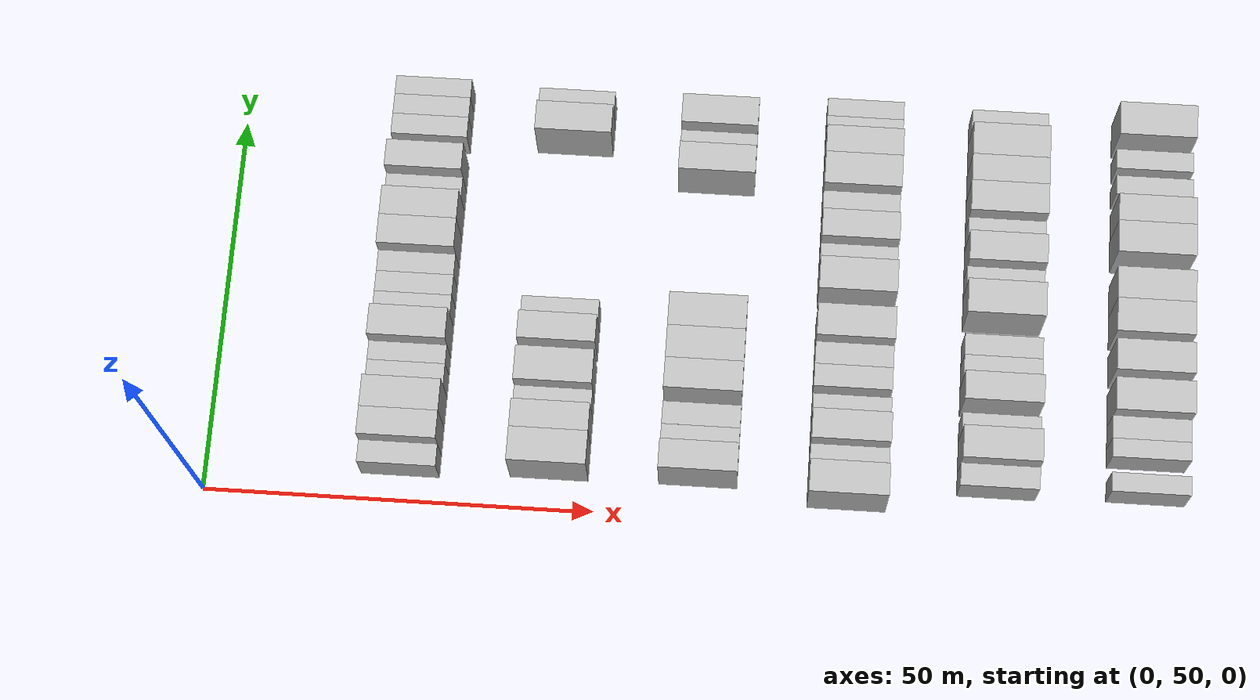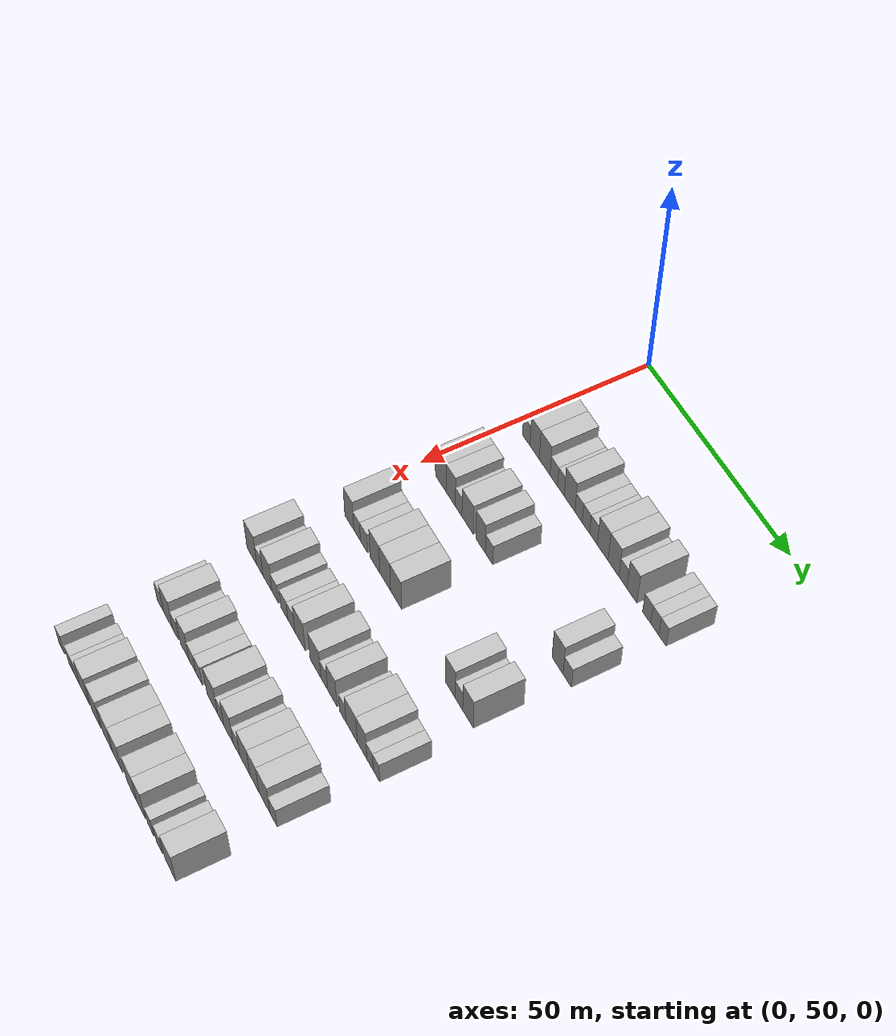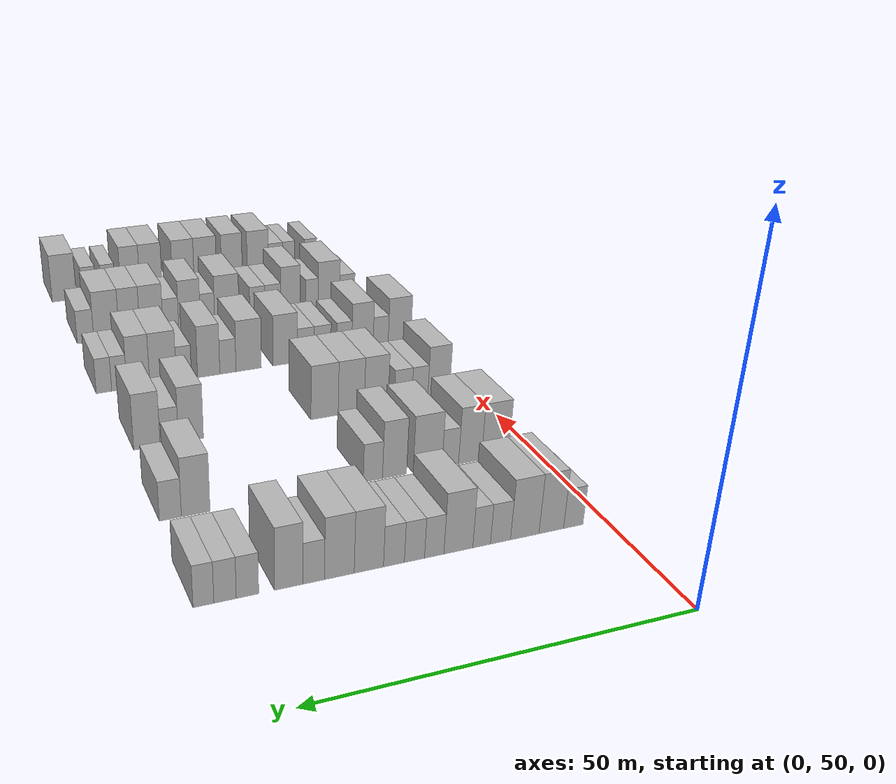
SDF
<sdf version="1.6">
 <world name="default">
  <model name="building_100">
   <static>1</static>
   <pose>25.0000 54.7202 0 0.000000 0.000000 0.000000</pose>
   <link name="link">
    <pose>0 0 3.00 0 0 0</pose>
    <collision name="collision"><geometry><box><size>10.0000 2.8771 6.0000</size></box></geometry></collision>
    <visual name="visual">
     <cast_shadows>0</cast_shadows>
     <geometry><box><size>10.0000 2.8771 6.0000</size></box></geometry>
     <material>
      <script>
       <uri>model://HANNAS_wall/materials/scripts</uri>
       <uri>model://HANNAS_wall/materials/textures</uri>
       <name>vrc/HANNAS_wall</name>
      </script>
     </material>
    </visual>
   </link>
  </model>
  <model name="building_101">
   <static>1</static>
   <pose>25.0000 57.9601 0 0.000000 0.000000 0.000000</pose>
   <link name="link">
    <pose>0 0 4.50 0 0 0</pose>
    <collision name="collision"><geometry><box><size>10.0000 3.6027 9.0000</size></box></geometry></collision>
    <visual name="visual">
     <cast_shadows>0</cast_shadows>
     <geometry><box><size>10.0000 3.6027 9.0000</size></box></geometry>
     <material>
      <script>
       <uri>model://HANNAS_wall/materials/scripts</uri>
       <uri>model://HANNAS_wall/materials/textures</uri>
       <name>vrc/HANNAS_wall</name>
      </script>
     </material>
    </visual>
   </link>
  </model>
  <model name="building_102">
   <static>1</static>
   <pose>25.0000 61.8194 0 0.000000 0.000000 0.000000</pose>
   <link name="link">
    <pose>0 0 4.50 0 0 0</pose>
    <collision name="collision"><geometry><box><size>10.0000 4.1159 9.0000</size></box></geometry></collision>
    <visual name="visual">
     <cast_shadows>0</cast_shadows>
     <geometry><box><size>10.0000 4.1159 9.0000</size></box></geometry>
     <material>
      <script>
       <uri>model://HANNAS_wall/materials/scripts</uri>
       <uri>model://HANNAS_wall/materials/textures</uri>
       <name>vrc/HANNAS_wall</name>
      </script>
     </material>
    </visual>
   </link>
  </model>
  <model name="building_103">
   <static>1</static>
   <pose>25.0000 65.3079 0 0.000000 0.000000 0.000000</pose>
   <link name="link">
    <pose>0 0 3.00 0 0 0</pose>
    <collision name="collision"><geometry><box><size>10.0000 2.8610 6.0000</size></box></geometry></collision>
    <visual name="visual">
     <cast_shadows>0</cast_shadows>
     <geometry><box><size>10.0000 2.8610 6.0000</size></box></geometry>
     <material>
      <script>
       <uri>model://HANNAS_wall/materials/scripts</uri>
       <uri>model://HANNAS_wall/materials/textures</uri>
       <name>vrc/HANNAS_wall</name>
      </script>
     </material>
    </visual>
   </link>
  </model>
  <model name="building_104">
   <static>1</static>
   <pose>25.0000 67.9923 0 0.000000 0.000000 0.000000</pose>
   <link name="link">
    <pose>0 0 3.00 0 0 0</pose>
    <collision name="collision"><geometry><box><size>10.0000 2.5078 6.0000</size></box></geometry></collision>
    <visual name="visual">
     <cast_shadows>0</cast_shadows>
     <geometry><box><size>10.0000 2.5078 6.0000</size></box></geometry>
     <material>
      <script>
       <uri>model://HANNAS_wall/materials/scripts</uri>
       <uri>model://HANNAS_wall/materials/textures</uri>
       <name>vrc/HANNAS_wall</name>
      </script>
     </material>
    </visual>
   </link>
  </model>
  <model name="building_105">
   <static>1</static>
   <pose>25.0000 71.2593 0 0.000000 0.000000 0.000000</pose>
   <link name="link">
    <pose>0 0 4.50 0 0 0</pose>
    <collision name="collision"><geometry><box><size>10.0000 4.0262 9.0000</size></box></geometry></collision>
    <visual name="visual">
     <cast_shadows>0</cast_shadows>
     <geometry><box><size>10.0000 4.0262 9.0000</size></box></geometry>
     <material>
      <script>
       <uri>model://HANNAS_wall/materials/scripts</uri>
       <uri>model://HANNAS_wall/materials/textures</uri>
       <name>vrc/HANNAS_wall</name>
      </script>
     </material>
    </visual>
   </link>
  </model>
  <model name="building_106">
   <static>1</static>
   <pose>25.0000 74.6072 0 0.000000 0.000000 0.000000</pose>
   <link name="link">
    <pose>0 0 3.00 0 0 0</pose>
    <collision name="collision"><geometry><box><size>10.0000 2.6695 6.0000</size></box></geometry></collision>
    <visual name="visual">
     <cast_shadows>0</cast_shadows>
     <geometry><box><size>10.0000 2.6695 6.0000</size></box></geometry>
     <material>
      <script>
       <uri>model://HANNAS_wall/materials/scripts</uri>
       <uri>model://HANNAS_wall/materials/textures</uri>
       <name>vrc/HANNAS_wall</name>
      </script>
     </material>
    </visual>
   </link>
  </model>
  <model name="building_107">
   <static>1</static>
   <pose>25.0000 77.3143 0 0.000000 0.000000 0.000000</pose>
   <link name="link">
    <pose>0 0 3.00 0 0 0</pose>
    <collision name="collision"><geometry><box><size>10.0000 2.7448 6.0000</size></box></geometry></collision>
    <visual name="visual">
     <cast_shadows>0</cast_shadows>
     <geometry><box><size>10.0000 2.7448 6.0000</size></box></geometry>
     <material>
      <script>
       <uri>model://HANNAS_wall/materials/scripts</uri>
       <uri>model://HANNAS_wall/materials/textures</uri>
       <name>vrc/HANNAS_wall</name>
      </script>
     </material>
    </visual>
   </link>
  </model>
  <model name="building_108">
   <static>1</static>
   <pose>25.0000 80.0945 0 0.000000 0.000000 0.000000</pose>
   <link name="link">
    <pose>0 0 3.00 0 0 0</pose>
    <collision name="collision"><geometry><box><size>10.0000 2.8157 6.0000</size></box></geometry></collision>
    <visual name="visual">
     <cast_shadows>0</cast_shadows>
     <geometry><box><size>10.0000 2.8157 6.0000</size></box></geometry>
     <material>
      <script>
       <uri>model://HANNAS_wall/materials/scripts</uri>
       <uri>model://HANNAS_wall/materials/textures</uri>
       <name>vrc/HANNAS_wall</name>
      </script>
     </material>
    </visual>
   </link>
  </model>
  <model name="building_109">
   <static>1</static>
   <pose>25.0000 83.4525 0 0.000000 0.000000 0.000000</pose>
   <link name="link">
    <pose>0 0 4.50 0 0 0</pose>
    <collision name="collision"><geometry><box><size>10.0000 3.9001 9.0000</size></box></geometry></collision>
    <visual name="visual">
     <cast_shadows>0</cast_shadows>
     <geometry><box><size>10.0000 3.9001 9.0000</size></box></geometry>
     <material>
      <script>
       <uri>model://HANNAS_wall/materials/scripts</uri>
       <uri>model://HANNAS_wall/materials/textures</uri>
       <name>vrc/HANNAS_wall</name>
      </script>
     </material>
    </visual>
   </link>
  </model>
  <model name="building_110">
   <static>1</static>
   <pose>25.0000 87.3548 0 0.000000 0.000000 0.000000</pose>
   <link name="link">
    <pose>0 0 4.50 0 0 0</pose>
    <collision name="collision"><geometry><box><size>10.0000 3.9045 9.0000</size></box></geometry></collision>
    <visual name="visual">
     <cast_shadows>0</cast_shadows>
     <geometry><box><size>10.0000 3.9045 9.0000</size></box></geometry>
     <material>
      <script>
       <uri>model://HANNAS_wall/materials/scripts</uri>
       <uri>model://HANNAS_wall/materials/textures</uri>
       <name>vrc/HANNAS_wall</name>
      </script>
     </material>
    </visual>
   </link>
  </model>
  <model name="building_111">
   <static>1</static>
   <pose>25.0000 90.7027 0 0.000000 0.000000 0.000000</pose>
   <link name="link">
    <pose>0 0 3.00 0 0 0</pose>
    <collision name="collision"><geometry><box><size>10.0000 2.7913 6.0000</size></box></geometry></collision>
    <visual name="visual">
     <cast_shadows>0</cast_shadows>
     <geometry><box><size>10.0000 2.7913 6.0000</size></box></geometry>
     <material>
      <script>
       <uri>model://HANNAS_wall/materials/scripts</uri>
       <uri>model://HANNAS_wall/materials/textures</uri>
       <name>vrc/HANNAS_wall</name>
      </script>
     </material>
    </visual>
   </link>
  </model>
  <model name="building_112">
   <static>1</static>
   <pose>25.0000 93.9038 0 0.000000 0.000000 0.000000</pose>
   <link name="link">
    <pose>0 0 4.50 0 0 0</pose>
    <collision name="collision"><geometry><box><size>10.0000 3.6109 9.0000</size></box></geometry></collision>
    <visual name="visual">
     <cast_shadows>0</cast_shadows>
     <geometry><box><size>10.0000 3.6109 9.0000</size></box></geometry>
     <material>
      <script>
       <uri>model://HANNAS_wall/materials/scripts</uri>
       <uri>model://HANNAS_wall/materials/textures</uri>
       <name>vrc/HANNAS_wall</name>
      </script>
     </material>
    </visual>
   </link>
  </model>
  <model name="building_113">
   <static>1</static>
   <pose>25.0000 99.1155 0 0.000000 0.000000 0.000000</pose>
   <link name="link">
    <pose>0 0 3.00 0 0 0</pose>
    <collision name="collision"><geometry><box><size>10.0000 2.8125 6.0000</size></box></geometry></collision>
    <visual name="visual">
     <cast_shadows>0</cast_shadows>
     <geometry><box><size>10.0000 2.8125 6.0000</size></box></geometry>
     <material>
      <script>
       <uri>model://HANNAS_wall/materials/scripts</uri>
       <uri>model://HANNAS_wall/materials/textures</uri>
       <name>vrc/HANNAS_wall</name>
      </script>
     </material>
    </visual>
   </link>
  </model>
  <model name="building_114">
   <static>1</static>
   <pose>25.0000 101.9049 0 0.000000 0.000000 0.000000</pose>
   <link name="link">
    <pose>0 0 3.00 0 0 0</pose>
    <collision name="collision"><geometry><box><size>10.0000 2.7663 6.0000</size></box></geometry></collision>
    <visual name="visual">
     <cast_shadows>0</cast_shadows>
     <geometry><box><size>10.0000 2.7663 6.0000</size></box></geometry>
     <material>
      <script>
       <uri>model://HANNAS_wall/materials/scripts</uri>
       <uri>model://HANNAS_wall/materials/textures</uri>
       <name>vrc/HANNAS_wall</name>
      </script>
     </material>
    </visual>
   </link>
  </model>
  <model name="building_115">
   <static>1</static>
   <pose>25.0000 104.5640 0 0.000000 0.000000 0.000000</pose>
   <link name="link">
    <pose>0 0 3.00 0 0 0</pose>
    <collision name="collision"><geometry><box><size>10.0000 2.5519 6.0000</size></box></geometry></collision>
    <visual name="visual">
     <cast_shadows>0</cast_shadows>
     <geometry><box><size>10.0000 2.5519 6.0000</size></box></geometry>
     <material>
      <script>
       <uri>model://HANNAS_wall/materials/scripts</uri>
       <uri>model://HANNAS_wall/materials/textures</uri>
       <name>vrc/HANNAS_wall</name>
      </script>
     </material>
    </visual>
   </link>
  </model>
  <model name="building_269">
   <static>1</static>
   <pose>44.0000 56.1307 0 0.000000 0.000000 0.000000</pose>
   <link name="link">
    <pose>0 0 4.50 0 0 0</pose>
    <collision name="collision"><geometry><box><size>10.0000 4.3337 9.0000</size></box></geometry></collision>
    <visual name="visual">
     <cast_shadows>0</cast_shadows>
     <geometry><box><size>10.0000 4.3337 9.0000</size></box></geometry>
     <material>
      <script>
       <uri>model://HANNAS_wall/materials/scripts</uri>
       <uri>model://HANNAS_wall/materials/textures</uri>
       <name>vrc/HANNAS_wall</name>
      </script>
     </material>
    </visual>
   </link>
  </model>
  <model name="building_270">
   <static>1</static>
   <pose>44.0000 60.1086 0 0.000000 0.000000 0.000000</pose>
   <link name="link">
    <pose>0 0 4.50 0 0 0</pose>
    <collision name="collision"><geometry><box><size>10.0000 3.6220 9.0000</size></box></geometry></collision>
    <visual name="visual">
     <cast_shadows>0</cast_shadows>
     <geometry><box><size>10.0000 3.6220 9.0000</size></box></geometry>
     <material>
      <script>
       <uri>model://HANNAS_wall/materials/scripts</uri>
       <uri>model://HANNAS_wall/materials/textures</uri>
       <name>vrc/HANNAS_wall</name>
      </script>
     </material>
    </visual>
   </link>
  </model>
  <model name="building_271">
   <static>1</static>
   <pose>44.0000 63.2046 0 0.000000 0.000000 0.000000</pose>
   <link name="link">
    <pose>0 0 3.00 0 0 0</pose>
    <collision name="collision"><geometry><box><size>10.0000 2.5700 6.0000</size></box></geometry></collision>
    <visual name="visual">
     <cast_shadows>0</cast_shadows>
     <geometry><box><size>10.0000 2.5700 6.0000</size></box></geometry>
     <material>
      <script>
       <uri>model://HANNAS_wall/materials/scripts</uri>
       <uri>model://HANNAS_wall/materials/textures</uri>
       <name>vrc/HANNAS_wall</name>
      </script>
     </material>
    </visual>
   </link>
  </model>
  <model name="building_272">
   <static>1</static>
   <pose>44.0000 66.7151 0 0.000000 0.000000 0.000000</pose>
   <link name="link">
    <pose>0 0 4.50 0 0 0</pose>
    <collision name="collision"><geometry><box><size>10.0000 4.4510 9.0000</size></box></geometry></collision>
    <visual name="visual">
     <cast_shadows>0</cast_shadows>
     <geometry><box><size>10.0000 4.4510 9.0000</size></box></geometry>
     <material>
      <script>
       <uri>model://HANNAS_wall/materials/scripts</uri>
       <uri>model://HANNAS_wall/materials/textures</uri>
       <name>vrc/HANNAS_wall</name>
      </script>
     </material>
    </visual>
   </link>
  </model>
  <model name="building_273">
   <static>1</static>
   <pose>44.0000 71.7569 0 0.000000 0.000000 0.000000</pose>
   <link name="link">
    <pose>0 0 4.50 0 0 0</pose>
    <collision name="collision"><geometry><box><size>10.0000 3.6324 9.0000</size></box></geometry></collision>
    <visual name="visual">
     <cast_shadows>0</cast_shadows>
     <geometry><box><size>10.0000 3.6324 9.0000</size></box></geometry>
     <material>
      <script>
       <uri>model://HANNAS_wall/materials/scripts</uri>
       <uri>model://HANNAS_wall/materials/textures</uri>
       <name>vrc/HANNAS_wall</name>
      </script>
     </material>
    </visual>
   </link>
  </model>
  <model name="building_274">
   <static>1</static>
   <pose>44.0000 75.0173 0 0.000000 0.000000 0.000000</pose>
   <link name="link">
    <pose>0 0 3.00 0 0 0</pose>
    <collision name="collision"><geometry><box><size>10.0000 2.8885 6.0000</size></box></geometry></collision>
    <visual name="visual">
     <cast_shadows>0</cast_shadows>
     <geometry><box><size>10.0000 2.8885 6.0000</size></box></geometry>
     <material>
      <script>
       <uri>model://HANNAS_wall/materials/scripts</uri>
       <uri>model://HANNAS_wall/materials/textures</uri>
       <name>vrc/HANNAS_wall</name>
      </script>
     </material>
    </visual>
   </link>
  </model>
  <model name="building_275">
   <static>1</static>
   <pose>44.0000 100.3310 0 0.000000 0.000000 0.000000</pose>
   <link name="link">
    <pose>0 0 4.50 0 0 0</pose>
    <collision name="collision"><geometry><box><size>10.0000 3.9129 9.0000</size></box></geometry></collision>
    <visual name="visual">
     <cast_shadows>0</cast_shadows>
     <geometry><box><size>10.0000 3.9129 9.0000</size></box></geometry>
     <material>
      <script>
       <uri>model://HANNAS_wall/materials/scripts</uri>
       <uri>model://HANNAS_wall/materials/textures</uri>
       <name>vrc/HANNAS_wall</name>
      </script>
     </material>
    </visual>
   </link>
  </model>
  <model name="building_276">
   <static>1</static>
   <pose>44.0000 103.7779 0 0.000000 0.000000 0.000000</pose>
   <link name="link">
    <pose>0 0 3.00 0 0 0</pose>
    <collision name="collision"><geometry><box><size>10.0000 2.9811 6.0000</size></box></geometry></collision>
    <visual name="visual">
     <cast_shadows>0</cast_shadows>
     <geometry><box><size>10.0000 2.9811 6.0000</size></box></geometry>
     <material>
      <script>
       <uri>model://HANNAS_wall/materials/scripts</uri>
       <uri>model://HANNAS_wall/materials/textures</uri>
       <name>vrc/HANNAS_wall</name>
      </script>
     </material>
    </visual>
   </link>
  </model>
  <model name="building_437">
   <static>1</static>
   <pose>63.0000 56.0373 0 0.000000 0.000000 0.000000</pose>
   <link name="link">
    <pose>0 0 4.50 0 0 0</pose>
    <collision name="collision"><geometry><box><size>10.0000 3.7233 9.0000</size></box></geometry></collision>
    <visual name="visual">
     <cast_shadows>0</cast_shadows>
     <geometry><box><size>10.0000 3.7233 9.0000</size></box></geometry>
     <material>
      <script>
       <uri>model://HANNAS_wall/materials/scripts</uri>
       <uri>model://HANNAS_wall/materials/textures</uri>
       <name>vrc/HANNAS_wall</name>
      </script>
     </material>
    </visual>
   </link>
  </model>
  <model name="building_438">
   <static>1</static>
   <pose>63.0000 59.2451 0 0.000000 0.000000 0.000000</pose>
   <link name="link">
    <pose>0 0 3.00 0 0 0</pose>
    <collision name="collision"><geometry><box><size>10.0000 2.6923 6.0000</size></box></geometry></collision>
    <visual name="visual">
     <cast_shadows>0</cast_shadows>
     <geometry><box><size>10.0000 2.6923 6.0000</size></box></geometry>
     <material>
      <script>
       <uri>model://HANNAS_wall/materials/scripts</uri>
       <uri>model://HANNAS_wall/materials/textures</uri>
       <name>vrc/HANNAS_wall</name>
      </script>
     </material>
    </visual>
   </link>
  </model>
  <model name="building_439">
   <static>1</static>
   <pose>63.0000 62.0840 0 0.000000 0.000000 0.000000</pose>
   <link name="link">
    <pose>0 0 3.00 0 0 0</pose>
    <collision name="collision"><geometry><box><size>10.0000 2.9853 6.0000</size></box></geometry></collision>
    <visual name="visual">
     <cast_shadows>0</cast_shadows>
     <geometry><box><size>10.0000 2.9853 6.0000</size></box></geometry>
     <material>
      <script>
       <uri>model://HANNAS_wall/materials/scripts</uri>
       <uri>model://HANNAS_wall/materials/textures</uri>
       <name>vrc/HANNAS_wall</name>
      </script>
     </material>
    </visual>
   </link>
  </model>
  <model name="building_440">
   <static>1</static>
   <pose>63.0000 66.5560 0 0.000000 0.000000 0.000000</pose>
   <link name="link">
    <pose>0 0 4.50 0 0 0</pose>
    <collision name="collision"><geometry><box><size>10.0000 3.9587 9.0000</size></box></geometry></collision>
    <visual name="visual">
     <cast_shadows>0</cast_shadows>
     <geometry><box><size>10.0000 3.9587 9.0000</size></box></geometry>
     <material>
      <script>
       <uri>model://HANNAS_wall/materials/scripts</uri>
       <uri>model://HANNAS_wall/materials/textures</uri>
       <name>vrc/HANNAS_wall</name>
      </script>
     </material>
    </visual>
   </link>
  </model>
  <model name="building_441">
   <static>1</static>
   <pose>63.0000 70.6706 0 0.000000 0.000000 0.000000</pose>
   <link name="link">
    <pose>0 0 4.50 0 0 0</pose>
    <collision name="collision"><geometry><box><size>10.0000 4.2705 9.0000</size></box></geometry></collision>
    <visual name="visual">
     <cast_shadows>0</cast_shadows>
     <geometry><box><size>10.0000 4.2705 9.0000</size></box></geometry>
     <material>
      <script>
       <uri>model://HANNAS_wall/materials/scripts</uri>
       <uri>model://HANNAS_wall/materials/textures</uri>
       <name>vrc/HANNAS_wall</name>
      </script>
     </material>
    </visual>
   </link>
  </model>
  <model name="building_442">
   <static>1</static>
   <pose>63.0000 75.0108 0 0.000000 0.000000 0.000000</pose>
   <link name="link">
    <pose>0 0 4.50 0 0 0</pose>
    <collision name="collision"><geometry><box><size>10.0000 4.4099 9.0000</size></box></geometry></collision>
    <visual name="visual">
     <cast_shadows>0</cast_shadows>
     <geometry><box><size>10.0000 4.4099 9.0000</size></box></geometry>
     <material>
      <script>
       <uri>model://HANNAS_wall/materials/scripts</uri>
       <uri>model://HANNAS_wall/materials/textures</uri>
       <name>vrc/HANNAS_wall</name>
      </script>
     </material>
    </visual>
   </link>
  </model>
  <model name="building_443">
   <static>1</static>
   <pose>63.0000 95.8762 0 0.000000 0.000000 0.000000</pose>
   <link name="link">
    <pose>0 0 4.50 0 0 0</pose>
    <collision name="collision"><geometry><box><size>10.0000 3.7736 9.0000</size></box></geometry></collision>
    <visual name="visual">
     <cast_shadows>0</cast_shadows>
     <geometry><box><size>10.0000 3.7736 9.0000</size></box></geometry>
     <material>
      <script>
       <uri>model://HANNAS_wall/materials/scripts</uri>
       <uri>model://HANNAS_wall/materials/textures</uri>
       <name>vrc/HANNAS_wall</name>
      </script>
     </material>
    </visual>
   </link>
  </model>
  <model name="building_444">
   <static>1</static>
   <pose>63.0000 99.1327 0 0.000000 0.000000 0.000000</pose>
   <link name="link">
    <pose>0 0 3.00 0 0 0</pose>
    <collision name="collision"><geometry><box><size>10.0000 2.7394 6.0000</size></box></geometry></collision>
    <visual name="visual">
     <cast_shadows>0</cast_shadows>
     <geometry><box><size>10.0000 2.7394 6.0000</size></box></geometry>
     <material>
      <script>
       <uri>model://HANNAS_wall/materials/scripts</uri>
       <uri>model://HANNAS_wall/materials/textures</uri>
       <name>vrc/HANNAS_wall</name>
      </script>
     </material>
    </visual>
   </link>
  </model>
  <model name="building_445">
   <static>1</static>
   <pose>63.0000 102.4610 0 0.000000 0.000000 0.000000</pose>
   <link name="link">
    <pose>0 0 4.50 0 0 0</pose>
    <collision name="collision"><geometry><box><size>10.0000 3.9171 9.0000</size></box></geometry></collision>
    <visual name="visual">
     <cast_shadows>0</cast_shadows>
     <geometry><box><size>10.0000 3.9171 9.0000</size></box></geometry>
     <material>
      <script>
       <uri>model://HANNAS_wall/materials/scripts</uri>
       <uri>model://HANNAS_wall/materials/textures</uri>
       <name>vrc/HANNAS_wall</name>
      </script>
     </material>
    </visual>
   </link>
  </model>
  <model name="building_612">
   <static>1</static>
   <pose>82.0000 54.3563 0 0.000000 0.000000 0.000000</pose>
   <link name="link">
    <pose>0 0 4.50 0 0 0</pose>
    <collision name="collision"><geometry><box><size>10.0000 4.1701 9.0000</size></box></geometry></collision>
    <visual name="visual">
     <cast_shadows>0</cast_shadows>
     <geometry><box><size>10.0000 4.1701 9.0000</size></box></geometry>
     <material>
      <script>
       <uri>model://HANNAS_wall/materials/scripts</uri>
       <uri>model://HANNAS_wall/materials/textures</uri>
       <name>vrc/HANNAS_wall</name>
      </script>
     </material>
    </visual>
   </link>
  </model>
  <model name="building_613">
   <static>1</static>
   <pose>82.0000 57.8096 0 0.000000 0.000000 0.000000</pose>
   <link name="link">
    <pose>0 0 3.00 0 0 0</pose>
    <collision name="collision"><geometry><box><size>10.0000 2.7364 6.0000</size></box></geometry></collision>
    <visual name="visual">
     <cast_shadows>0</cast_shadows>
     <geometry><box><size>10.0000 2.7364 6.0000</size></box></geometry>
     <material>
      <script>
       <uri>model://HANNAS_wall/materials/scripts</uri>
       <uri>model://HANNAS_wall/materials/textures</uri>
       <name>vrc/HANNAS_wall</name>
      </script>
     </material>
    </visual>
   </link>
  </model>
  <model name="building_614">
   <static>1</static>
   <pose>82.0000 61.1097 0 0.000000 0.000000 0.000000</pose>
   <link name="link">
    <pose>0 0 4.50 0 0 0</pose>
    <collision name="collision"><geometry><box><size>10.0000 3.8639 9.0000</size></box></geometry></collision>
    <visual name="visual">
     <cast_shadows>0</cast_shadows>
     <geometry><box><size>10.0000 3.8639 9.0000</size></box></geometry>
     <material>
      <script>
       <uri>model://HANNAS_wall/materials/scripts</uri>
       <uri>model://HANNAS_wall/materials/textures</uri>
       <name>vrc/HANNAS_wall</name>
      </script>
     </material>
    </visual>
   </link>
  </model>
  <model name="building_615">
   <static>1</static>
   <pose>82.0000 64.4013 0 0.000000 0.000000 0.000000</pose>
   <link name="link">
    <pose>0 0 3.00 0 0 0</pose>
    <collision name="collision"><geometry><box><size>10.0000 2.7193 6.0000</size></box></geometry></collision>
    <visual name="visual">
     <cast_shadows>0</cast_shadows>
     <geometry><box><size>10.0000 2.7193 6.0000</size></box></geometry>
     <material>
      <script>
       <uri>model://HANNAS_wall/materials/scripts</uri>
       <uri>model://HANNAS_wall/materials/textures</uri>
       <name>vrc/HANNAS_wall</name>
      </script>
     </material>
    </visual>
   </link>
  </model>
  <model name="building_616">
   <static>1</static>
   <pose>82.0000 68.2459 0 0.000000 0.000000 0.000000</pose>
   <link name="link">
    <pose>0 0 3.00 0 0 0</pose>
    <collision name="collision"><geometry><box><size>10.0000 2.9698 6.0000</size></box></geometry></collision>
    <visual name="visual">
     <cast_shadows>0</cast_shadows>
     <geometry><box><size>10.0000 2.9698 6.0000</size></box></geometry>
     <material>
      <script>
       <uri>model://HANNAS_wall/materials/scripts</uri>
       <uri>model://HANNAS_wall/materials/textures</uri>
       <name>vrc/HANNAS_wall</name>
      </script>
     </material>
    </visual>
   </link>
  </model>
  <model name="building_617">
   <static>1</static>
   <pose>82.0000 71.1991 0 0.000000 0.000000 0.000000</pose>
   <link name="link">
    <pose>0 0 3.00 0 0 0</pose>
    <collision name="collision"><geometry><box><size>10.0000 2.9366 6.0000</size></box></geometry></collision>
    <visual name="visual">
     <cast_shadows>0</cast_shadows>
     <geometry><box><size>10.0000 2.9366 6.0000</size></box></geometry>
     <material>
      <script>
       <uri>model://HANNAS_wall/materials/scripts</uri>
       <uri>model://HANNAS_wall/materials/textures</uri>
       <name>vrc/HANNAS_wall</name>
      </script>
     </material>
    </visual>
   </link>
  </model>
  <model name="building_618">
   <static>1</static>
   <pose>82.0000 74.7879 0 0.000000 0.000000 0.000000</pose>
   <link name="link">
    <pose>0 0 4.50 0 0 0</pose>
    <collision name="collision"><geometry><box><size>10.0000 4.2410 9.0000</size></box></geometry></collision>
    <visual name="visual">
     <cast_shadows>0</cast_shadows>
     <geometry><box><size>10.0000 4.2410 9.0000</size></box></geometry>
     <material>
      <script>
       <uri>model://HANNAS_wall/materials/scripts</uri>
       <uri>model://HANNAS_wall/materials/textures</uri>
       <name>vrc/HANNAS_wall</name>
      </script>
     </material>
    </visual>
   </link>
  </model>
  <model name="building_619">
   <static>1</static>
   <pose>82.0000 81.0736 0 0.000000 0.000000 0.000000</pose>
   <link name="link">
    <pose>0 0 4.50 0 0 0</pose>
    <collision name="collision"><geometry><box><size>10.0000 4.3304 9.0000</size></box></geometry></collision>
    <visual name="visual">
     <cast_shadows>0</cast_shadows>
     <geometry><box><size>10.0000 4.3304 9.0000</size></box></geometry>
     <material>
      <script>
       <uri>model://HANNAS_wall/materials/scripts</uri>
       <uri>model://HANNAS_wall/materials/textures</uri>
       <name>vrc/HANNAS_wall</name>
      </script>
     </material>
    </visual>
   </link>
  </model>
  <model name="building_620">
   <static>1</static>
   <pose>82.0000 84.6042 0 0.000000 0.000000 0.000000</pose>
   <link name="link">
    <pose>0 0 3.00 0 0 0</pose>
    <collision name="collision"><geometry><box><size>10.0000 2.7307 6.0000</size></box></geometry></collision>
    <visual name="visual">
     <cast_shadows>0</cast_shadows>
     <geometry><box><size>10.0000 2.7307 6.0000</size></box></geometry>
     <material>
      <script>
       <uri>model://HANNAS_wall/materials/scripts</uri>
       <uri>model://HANNAS_wall/materials/textures</uri>
       <name>vrc/HANNAS_wall</name>
      </script>
     </material>
    </visual>
   </link>
  </model>
  <model name="building_621">
   <static>1</static>
   <pose>82.0000 87.8285 0 0.000000 0.000000 0.000000</pose>
   <link name="link">
    <pose>0 0 4.50 0 0 0</pose>
    <collision name="collision"><geometry><box><size>10.0000 3.7180 9.0000</size></box></geometry></collision>
    <visual name="visual">
     <cast_shadows>0</cast_shadows>
     <geometry><box><size>10.0000 3.7180 9.0000</size></box></geometry>
     <material>
      <script>
       <uri>model://HANNAS_wall/materials/scripts</uri>
       <uri>model://HANNAS_wall/materials/textures</uri>
       <name>vrc/HANNAS_wall</name>
      </script>
     </material>
    </visual>
   </link>
  </model>
  <model name="building_622">
   <static>1</static>
   <pose>82.0000 91.9439 0 0.000000 0.000000 0.000000</pose>
   <link name="link">
    <pose>0 0 3.00 0 0 0</pose>
    <collision name="collision"><geometry><box><size>10.0000 2.5127 6.0000</size></box></geometry></collision>
    <visual name="visual">
     <cast_shadows>0</cast_shadows>
     <geometry><box><size>10.0000 2.5127 6.0000</size></box></geometry>
     <material>
      <script>
       <uri>model://HANNAS_wall/materials/scripts</uri>
       <uri>model://HANNAS_wall/materials/textures</uri>
       <name>vrc/HANNAS_wall</name>
      </script>
     </material>
    </visual>
   </link>
  </model>
  <model name="building_623">
   <static>1</static>
   <pose>82.0000 95.3791 0 0.000000 0.000000 0.000000</pose>
   <link name="link">
    <pose>0 0 4.50 0 0 0</pose>
    <collision name="collision"><geometry><box><size>10.0000 4.3576 9.0000</size></box></geometry></collision>
    <visual name="visual">
     <cast_shadows>0</cast_shadows>
     <geometry><box><size>10.0000 4.3576 9.0000</size></box></geometry>
     <material>
      <script>
       <uri>model://HANNAS_wall/materials/scripts</uri>
       <uri>model://HANNAS_wall/materials/textures</uri>
       <name>vrc/HANNAS_wall</name>
      </script>
     </material>
    </visual>
   </link>
  </model>
  <model name="building_624">
   <static>1</static>
   <pose>82.0000 99.3920 0 0.000000 0.000000 0.000000</pose>
   <link name="link">
    <pose>0 0 4.50 0 0 0</pose>
    <collision name="collision"><geometry><box><size>10.0000 3.6683 9.0000</size></box></geometry></collision>
    <visual name="visual">
     <cast_shadows>0</cast_shadows>
     <geometry><box><size>10.0000 3.6683 9.0000</size></box></geometry>
     <material>
      <script>
       <uri>model://HANNAS_wall/materials/scripts</uri>
       <uri>model://HANNAS_wall/materials/textures</uri>
       <name>vrc/HANNAS_wall</name>
      </script>
     </material>
    </visual>
   </link>
  </model>
  <model name="building_625">
   <static>1</static>
   <pose>82.0000 102.4519 0 0.000000 0.000000 0.000000</pose>
   <link name="link">
    <pose>0 0 3.00 0 0 0</pose>
    <collision name="collision"><geometry><box><size>10.0000 2.4516 6.0000</size></box></geometry></collision>
    <visual name="visual">
     <cast_shadows>0</cast_shadows>
     <geometry><box><size>10.0000 2.4516 6.0000</size></box></geometry>
     <material>
      <script>
       <uri>model://HANNAS_wall/materials/scripts</uri>
       <uri>model://HANNAS_wall/materials/textures</uri>
       <name>vrc/HANNAS_wall</name>
      </script>
     </material>
    </visual>
   </link>
  </model>
  <model name="building_626">
   <static>1</static>
   <pose>82.0000 104.9061 0 0.000000 0.000000 0.000000</pose>
   <link name="link">
    <pose>0 0 3.00 0 0 0</pose>
    <collision name="collision"><geometry><box><size>10.0000 2.4568 6.0000</size></box></geometry></collision>
    <visual name="visual">
     <cast_shadows>0</cast_shadows>
     <geometry><box><size>10.0000 2.4568 6.0000</size></box></geometry>
     <material>
      <script>
       <uri>model://HANNAS_wall/materials/scripts</uri>
       <uri>model://HANNAS_wall/materials/textures</uri>
       <name>vrc/HANNAS_wall</name>
      </script>
     </material>
    </visual>
   </link>
  </model>
  <model name="building_783">
   <static>1</static>
   <pose>101.0000 56.3831 0 0.000000 0.000000 0.000000</pose>
   <link name="link">
    <pose>0 0 3.00 0 0 0</pose>
    <collision name="collision"><geometry><box><size>10.0000 2.8956 6.0000</size></box></geometry></collision>
    <visual name="visual">
     <cast_shadows>0</cast_shadows>
     <geometry><box><size>10.0000 2.8956 6.0000</size></box></geometry>
     <material>
      <script>
       <uri>model://HANNAS_wall/materials/scripts</uri>
       <uri>model://HANNAS_wall/materials/textures</uri>
       <name>vrc/HANNAS_wall</name>
      </script>
     </material>
    </visual>
   </link>
  </model>
  <model name="building_784">
   <static>1</static>
   <pose>101.0000 59.9115 0 0.000000 0.000000 0.000000</pose>
   <link name="link">
    <pose>0 0 4.50 0 0 0</pose>
    <collision name="collision"><geometry><box><size>10.0000 4.1613 9.0000</size></box></geometry></collision>
    <visual name="visual">
     <cast_shadows>0</cast_shadows>
     <geometry><box><size>10.0000 4.1613 9.0000</size></box></geometry>
     <material>
      <script>
       <uri>model://HANNAS_wall/materials/scripts</uri>
       <uri>model://HANNAS_wall/materials/textures</uri>
       <name>vrc/HANNAS_wall</name>
      </script>
     </material>
    </visual>
   </link>
  </model>
  <model name="building_785">
   <static>1</static>
   <pose>101.0000 63.2044 0 0.000000 0.000000 0.000000</pose>
   <link name="link">
    <pose>0 0 3.00 0 0 0</pose>
    <collision name="collision"><geometry><box><size>10.0000 2.4245 6.0000</size></box></geometry></collision>
    <visual name="visual">
     <cast_shadows>0</cast_shadows>
     <geometry><box><size>10.0000 2.4245 6.0000</size></box></geometry>
     <material>
      <script>
       <uri>model://HANNAS_wall/materials/scripts</uri>
       <uri>model://HANNAS_wall/materials/textures</uri>
       <name>vrc/HANNAS_wall</name>
      </script>
     </material>
    </visual>
   </link>
  </model>
  <model name="building_786">
   <static>1</static>
   <pose>101.0000 67.2651 0 0.000000 0.000000 0.000000</pose>
   <link name="link">
    <pose>0 0 4.50 0 0 0</pose>
    <collision name="collision"><geometry><box><size>10.0000 3.6969 9.0000</size></box></geometry></collision>
    <visual name="visual">
     <cast_shadows>0</cast_shadows>
     <geometry><box><size>10.0000 3.6969 9.0000</size></box></geometry>
     <material>
      <script>
       <uri>model://HANNAS_wall/materials/scripts</uri>
       <uri>model://HANNAS_wall/materials/textures</uri>
       <name>vrc/HANNAS_wall</name>
      </script>
     </material>
    </visual>
   </link>
  </model>
  <model name="building_787">
   <static>1</static>
   <pose>101.0000 70.5919 0 0.000000 0.000000 0.000000</pose>
   <link name="link">
    <pose>0 0 3.00 0 0 0</pose>
    <collision name="collision"><geometry><box><size>10.0000 2.9568 6.0000</size></box></geometry></collision>
    <visual name="visual">
     <cast_shadows>0</cast_shadows>
     <geometry><box><size>10.0000 2.9568 6.0000</size></box></geometry>
     <material>
      <script>
       <uri>model://HANNAS_wall/materials/scripts</uri>
       <uri>model://HANNAS_wall/materials/textures</uri>
       <name>vrc/HANNAS_wall</name>
      </script>
     </material>
    </visual>
   </link>
  </model>
  <model name="building_788">
   <static>1</static>
   <pose>101.0000 73.4823 0 0.000000 0.000000 0.000000</pose>
   <link name="link">
    <pose>0 0 3.00 0 0 0</pose>
    <collision name="collision"><geometry><box><size>10.0000 2.8240 6.0000</size></box></geometry></collision>
    <visual name="visual">
     <cast_shadows>0</cast_shadows>
     <geometry><box><size>10.0000 2.8240 6.0000</size></box></geometry>
     <material>
      <script>
       <uri>model://HANNAS_wall/materials/scripts</uri>
       <uri>model://HANNAS_wall/materials/textures</uri>
       <name>vrc/HANNAS_wall</name>
      </script>
     </material>
    </visual>
   </link>
  </model>
  <model name="building_789">
   <static>1</static>
   <pose>101.0000 79.1297 0 0.000000 0.000000 0.000000</pose>
   <link name="link">
    <pose>0 0 4.50 0 0 0</pose>
    <collision name="collision"><geometry><box><size>10.0000 4.4708 9.0000</size></box></geometry></collision>
    <visual name="visual">
     <cast_shadows>0</cast_shadows>
     <geometry><box><size>10.0000 4.4708 9.0000</size></box></geometry>
     <material>
      <script>
       <uri>model://HANNAS_wall/materials/scripts</uri>
       <uri>model://HANNAS_wall/materials/textures</uri>
       <name>vrc/HANNAS_wall</name>
      </script>
     </material>
    </visual>
   </link>
  </model>
  <model name="building_790">
   <static>1</static>
   <pose>101.0000 82.6685 0 0.000000 0.000000 0.000000</pose>
   <link name="link">
    <pose>0 0 3.00 0 0 0</pose>
    <collision name="collision"><geometry><box><size>10.0000 2.6068 6.0000</size></box></geometry></collision>
    <visual name="visual">
     <cast_shadows>0</cast_shadows>
     <geometry><box><size>10.0000 2.6068 6.0000</size></box></geometry>
     <material>
      <script>
       <uri>model://HANNAS_wall/materials/scripts</uri>
       <uri>model://HANNAS_wall/materials/textures</uri>
       <name>vrc/HANNAS_wall</name>
      </script>
     </material>
    </visual>
   </link>
  </model>
  <model name="building_791">
   <static>1</static>
   <pose>101.0000 85.9202 0 0.000000 0.000000 0.000000</pose>
   <link name="link">
    <pose>0 0 4.50 0 0 0</pose>
    <collision name="collision"><geometry><box><size>10.0000 3.8966 9.0000</size></box></geometry></collision>
    <visual name="visual">
     <cast_shadows>0</cast_shadows>
     <geometry><box><size>10.0000 3.8966 9.0000</size></box></geometry>
     <material>
      <script>
       <uri>model://HANNAS_wall/materials/scripts</uri>
       <uri>model://HANNAS_wall/materials/textures</uri>
       <name>vrc/HANNAS_wall</name>
      </script>
     </material>
    </visual>
   </link>
  </model>
  <model name="building_792">
   <static>1</static>
   <pose>101.0000 89.2698 0 0.000000 0.000000 0.000000</pose>
   <link name="link">
    <pose>0 0 3.00 0 0 0</pose>
    <collision name="collision"><geometry><box><size>10.0000 2.8026 6.0000</size></box></geometry></collision>
    <visual name="visual">
     <cast_shadows>0</cast_shadows>
     <geometry><box><size>10.0000 2.8026 6.0000</size></box></geometry>
     <material>
      <script>
       <uri>model://HANNAS_wall/materials/scripts</uri>
       <uri>model://HANNAS_wall/materials/textures</uri>
       <name>vrc/HANNAS_wall</name>
      </script>
     </material>
    </visual>
   </link>
  </model>
  <model name="building_793">
   <static>1</static>
   <pose>101.0000 92.7174 0 0.000000 0.000000 0.000000</pose>
   <link name="link">
    <pose>0 0 4.50 0 0 0</pose>
    <collision name="collision"><geometry><box><size>10.0000 4.0926 9.0000</size></box></geometry></collision>
    <visual name="visual">
     <cast_shadows>0</cast_shadows>
     <geometry><box><size>10.0000 4.0926 9.0000</size></box></geometry>
     <material>
      <script>
       <uri>model://HANNAS_wall/materials/scripts</uri>
       <uri>model://HANNAS_wall/materials/textures</uri>
       <name>vrc/HANNAS_wall</name>
      </script>
     </material>
    </visual>
   </link>
  </model>
  <model name="building_794">
   <static>1</static>
   <pose>101.0000 96.5786 0 0.000000 0.000000 0.000000</pose>
   <link name="link">
    <pose>0 0 4.50 0 0 0</pose>
    <collision name="collision"><geometry><box><size>10.0000 3.6298 9.0000</size></box></geometry></collision>
    <visual name="visual">
     <cast_shadows>0</cast_shadows>
     <geometry><box><size>10.0000 3.6298 9.0000</size></box></geometry>
     <material>
      <script>
       <uri>model://HANNAS_wall/materials/scripts</uri>
       <uri>model://HANNAS_wall/materials/textures</uri>
       <name>vrc/HANNAS_wall</name>
      </script>
     </material>
    </visual>
   </link>
  </model>
  <model name="building_795">
   <static>1</static>
   <pose>101.0000 100.5941 0 0.000000 0.000000 0.000000</pose>
   <link name="link">
    <pose>0 0 4.50 0 0 0</pose>
    <collision name="collision"><geometry><box><size>10.0000 4.4011 9.0000</size></box></geometry></collision>
    <visual name="visual">
     <cast_shadows>0</cast_shadows>
     <geometry><box><size>10.0000 4.4011 9.0000</size></box></geometry>
     <material>
      <script>
       <uri>model://HANNAS_wall/materials/scripts</uri>
       <uri>model://HANNAS_wall/materials/textures</uri>
       <name>vrc/HANNAS_wall</name>
      </script>
     </material>
    </visual>
   </link>
  </model>
  <model name="building_796">
   <static>1</static>
   <pose>101.0000 104.2265 0 0.000000 0.000000 0.000000</pose>
   <link name="link">
    <pose>0 0 3.00 0 0 0</pose>
    <collision name="collision"><geometry><box><size>10.0000 2.8638 6.0000</size></box></geometry></collision>
    <visual name="visual">
     <cast_shadows>0</cast_shadows>
     <geometry><box><size>10.0000 2.8638 6.0000</size></box></geometry>
     <material>
      <script>
       <uri>model://HANNAS_wall/materials/scripts</uri>
       <uri>model://HANNAS_wall/materials/textures</uri>
       <name>vrc/HANNAS_wall</name>
      </script>
     </material>
    </visual>
   </link>
  </model>
  <model name="building_955">
   <static>1</static>
   <pose>120.0000 56.5485 0 0.000000 0.000000 0.000000</pose>
   <link name="link">
    <pose>0 0 3.00 0 0 0</pose>
    <collision name="collision"><geometry><box><size>10.0000 2.4692 6.0000</size></box></geometry></collision>
    <visual name="visual">
     <cast_shadows>0</cast_shadows>
     <geometry><box><size>10.0000 2.4692 6.0000</size></box></geometry>
     <material>
      <script>
       <uri>model://HANNAS_wall/materials/scripts</uri>
       <uri>model://HANNAS_wall/materials/textures</uri>
       <name>vrc/HANNAS_wall</name>
      </script>
     </material>
    </visual>
   </link>
  </model>
  <model name="building_956">
   <static>1</static>
   <pose>120.0000 61.0032 0 0.000000 0.000000 0.000000</pose>
   <link name="link">
    <pose>0 0 3.00 0 0 0</pose>
    <collision name="collision"><geometry><box><size>10.0000 2.4402 6.0000</size></box></geometry></collision>
    <visual name="visual">
     <cast_shadows>0</cast_shadows>
     <geometry><box><size>10.0000 2.4402 6.0000</size></box></geometry>
     <material>
      <script>
       <uri>model://HANNAS_wall/materials/scripts</uri>
       <uri>model://HANNAS_wall/materials/textures</uri>
       <name>vrc/HANNAS_wall</name>
      </script>
     </material>
    </visual>
   </link>
  </model>
  <model name="building_957">
   <static>1</static>
   <pose>120.0000 63.7025 0 0.000000 0.000000 0.000000</pose>
   <link name="link">
    <pose>0 0 3.00 0 0 0</pose>
    <collision name="collision"><geometry><box><size>10.0000 2.9584 6.0000</size></box></geometry></collision>
    <visual name="visual">
     <cast_shadows>0</cast_shadows>
     <geometry><box><size>10.0000 2.9584 6.0000</size></box></geometry>
     <material>
      <script>
       <uri>model://HANNAS_wall/materials/scripts</uri>
       <uri>model://HANNAS_wall/materials/textures</uri>
       <name>vrc/HANNAS_wall</name>
      </script>
     </material>
    </visual>
   </link>
  </model>
  <model name="building_958">
   <static>1</static>
   <pose>120.0000 67.3103 0 0.000000 0.000000 0.000000</pose>
   <link name="link">
    <pose>0 0 4.50 0 0 0</pose>
    <collision name="collision"><geometry><box><size>10.0000 4.2572 9.0000</size></box></geometry></collision>
    <visual name="visual">
     <cast_shadows>0</cast_shadows>
     <geometry><box><size>10.0000 4.2572 9.0000</size></box></geometry>
     <material>
      <script>
       <uri>model://HANNAS_wall/materials/scripts</uri>
       <uri>model://HANNAS_wall/materials/textures</uri>
       <name>vrc/HANNAS_wall</name>
      </script>
     </material>
    </visual>
   </link>
  </model>
  <model name="building_959">
   <static>1</static>
   <pose>120.0000 72.4888 0 0.000000 0.000000 0.000000</pose>
   <link name="link">
    <pose>0 0 4.50 0 0 0</pose>
    <collision name="collision"><geometry><box><size>10.0000 4.1000 9.0000</size></box></geometry></collision>
    <visual name="visual">
     <cast_shadows>0</cast_shadows>
     <geometry><box><size>10.0000 4.1000 9.0000</size></box></geometry>
     <material>
      <script>
       <uri>model://HANNAS_wall/materials/scripts</uri>
       <uri>model://HANNAS_wall/materials/textures</uri>
       <name>vrc/HANNAS_wall</name>
      </script>
     </material>
    </visual>
   </link>
  </model>
  <model name="building_960">
   <static>1</static>
   <pose>120.0000 77.7418 0 0.000000 0.000000 0.000000</pose>
   <link name="link">
    <pose>0 0 4.50 0 0 0</pose>
    <collision name="collision"><geometry><box><size>10.0000 4.4059 9.0000</size></box></geometry></collision>
    <visual name="visual">
     <cast_shadows>0</cast_shadows>
     <geometry><box><size>10.0000 4.4059 9.0000</size></box></geometry>
     <material>
      <script>
       <uri>model://HANNAS_wall/materials/scripts</uri>
       <uri>model://HANNAS_wall/materials/textures</uri>
       <name>vrc/HANNAS_wall</name>
      </script>
     </material>
    </visual>
   </link>
  </model>
  <model name="building_961">
   <static>1</static>
   <pose>120.0000 82.0539 0 0.000000 0.000000 0.000000</pose>
   <link name="link">
    <pose>0 0 4.50 0 0 0</pose>
    <collision name="collision"><geometry><box><size>10.0000 4.2185 9.0000</size></box></geometry></collision>
    <visual name="visual">
     <cast_shadows>0</cast_shadows>
     <geometry><box><size>10.0000 4.2185 9.0000</size></box></geometry>
     <material>
      <script>
       <uri>model://HANNAS_wall/materials/scripts</uri>
       <uri>model://HANNAS_wall/materials/textures</uri>
       <name>vrc/HANNAS_wall</name>
      </script>
     </material>
    </visual>
   </link>
  </model>
  <model name="building_962">
   <static>1</static>
   <pose>120.0000 88.2882 0 0.000000 0.000000 0.000000</pose>
   <link name="link">
    <pose>0 0 4.50 0 0 0</pose>
    <collision name="collision"><geometry><box><size>10.0000 4.2501 9.0000</size></box></geometry></collision>
    <visual name="visual">
     <cast_shadows>0</cast_shadows>
     <geometry><box><size>10.0000 4.2501 9.0000</size></box></geometry>
     <material>
      <script>
       <uri>model://HANNAS_wall/materials/scripts</uri>
       <uri>model://HANNAS_wall/materials/textures</uri>
       <name>vrc/HANNAS_wall</name>
      </script>
     </material>
    </visual>
   </link>
  </model>
  <model name="building_963">
   <static>1</static>
   <pose>120.0000 92.2272 0 0.000000 0.000000 0.000000</pose>
   <link name="link">
    <pose>0 0 4.50 0 0 0</pose>
    <collision name="collision"><geometry><box><size>10.0000 3.6279 9.0000</size></box></geometry></collision>
    <visual name="visual">
     <cast_shadows>0</cast_shadows>
     <geometry><box><size>10.0000 3.6279 9.0000</size></box></geometry>
     <material>
      <script>
       <uri>model://HANNAS_wall/materials/scripts</uri>
       <uri>model://HANNAS_wall/materials/textures</uri>
       <name>vrc/HANNAS_wall</name>
      </script>
     </material>
    </visual>
   </link>
  </model>
  <model name="building_964">
   <static>1</static>
   <pose>120.0000 96.3371 0 0.000000 0.000000 0.000000</pose>
   <link name="link">
    <pose>0 0 3.00 0 0 0</pose>
    <collision name="collision"><geometry><box><size>10.0000 2.5919 6.0000</size></box></geometry></collision>
    <visual name="visual">
     <cast_shadows>0</cast_shadows>
     <geometry><box><size>10.0000 2.5919 6.0000</size></box></geometry>
     <material>
      <script>
       <uri>model://HANNAS_wall/materials/scripts</uri>
       <uri>model://HANNAS_wall/materials/textures</uri>
       <name>vrc/HANNAS_wall</name>
      </script>
     </material>
    </visual>
   </link>
  </model>
  <model name="building_965">
   <static>1</static>
   <pose>120.0000 99.9714 0 0.000000 0.000000 0.000000</pose>
   <link name="link">
    <pose>0 0 3.00 0 0 0</pose>
    <collision name="collision"><geometry><box><size>10.0000 2.6766 6.0000</size></box></geometry></collision>
    <visual name="visual">
     <cast_shadows>0</cast_shadows>
     <geometry><box><size>10.0000 2.6766 6.0000</size></box></geometry>
     <material>
      <script>
       <uri>model://HANNAS_wall/materials/scripts</uri>
       <uri>model://HANNAS_wall/materials/textures</uri>
       <name>vrc/HANNAS_wall</name>
      </script>
     </material>
    </visual>
   </link>
  </model>
  <model name="building_966">
   <static>1</static>
   <pose>120.0000 104.5487 0 0.000000 0.000000 0.000000</pose>
   <link name="link">
    <pose>0 0 4.50 0 0 0</pose>
    <collision name="collision"><geometry><box><size>10.0000 4.4781 9.0000</size></box></geometry></collision>
    <visual name="visual">
     <cast_shadows>0</cast_shadows>
     <geometry><box><size>10.0000 4.4781 9.0000</size></box></geometry>
     <material>
      <script>
       <uri>model://HANNAS_wall/materials/scripts</uri>
       <uri>model://HANNAS_wall/materials/textures</uri>
       <name>vrc/HANNAS_wall</name>
      </script>
     </material>
    </visual>
   </link>
  </model>
 </world>
</sdf>
